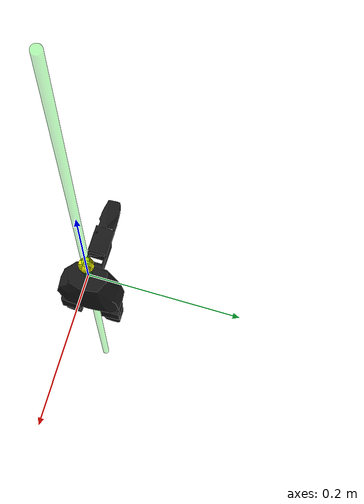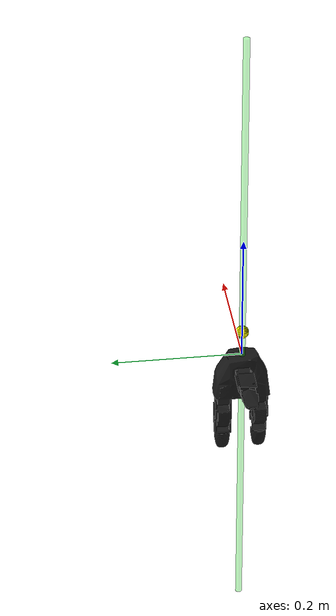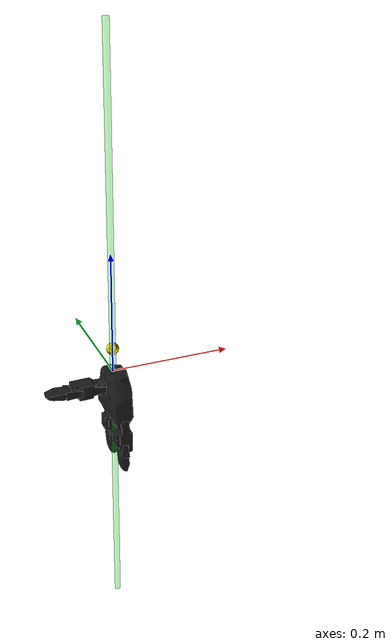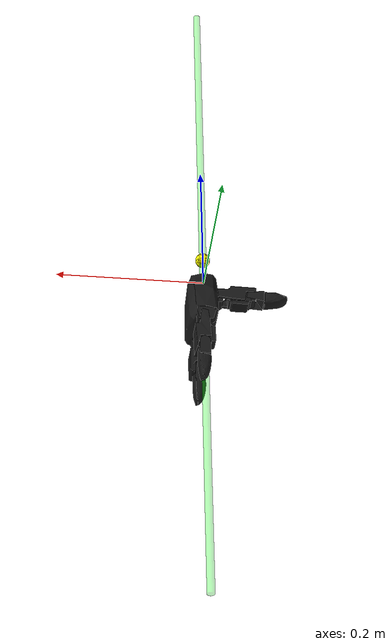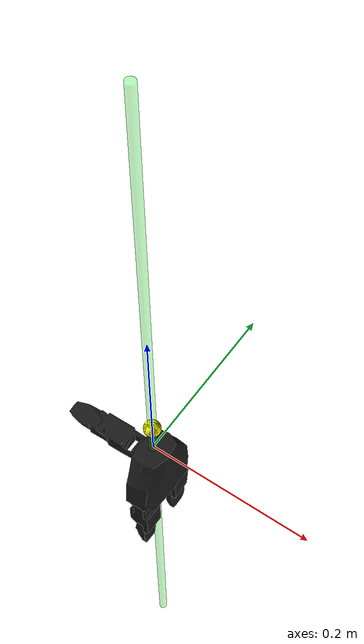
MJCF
<mujoco model="g1_threefinger_right_hand">
  <compiler angle="radian" />

  <default>
    <default class="finger_motor">
      <joint damping="0.01" armature="0.01" frictionloss="0.01" />
    </default>
  </default>

  <asset>
    <mesh name="right_hand_palm_link" file="meshes/right_hand_palm_link.STL" />
    <mesh name="right_hand_thumb_0_link" file="meshes/right_hand_thumb_0_link.STL" />
    <mesh name="right_hand_thumb_1_link" file="meshes/right_hand_thumb_1_link.STL" />
    <mesh name="right_hand_thumb_2_link" file="meshes/right_hand_thumb_2_link.STL" />
    <mesh name="right_hand_middle_0_link" file="meshes/right_hand_middle_0_link.STL" />
    <mesh name="right_hand_middle_1_link" file="meshes/right_hand_middle_1_link.STL" />
    <mesh name="right_hand_index_0_link" file="meshes/right_hand_index_0_link.STL" />
    <mesh name="right_hand_index_1_link" file="meshes/right_hand_index_1_link.STL" />
  </asset>

  <worldbody>
    <body name="right_hand_palm_link" pos="0 0 0.04" quat="0.5 -0.5 0.5 0.5">
      <site name="ft_frame" pos="0 0 0" size="0.01 0.01 0.01" rgba="1 1 0 1" type="sphere" group="1" />
      <geom pos="0.0415 -0.003 0" quat="1 0 0 0" type="mesh" contype="0"
        conaffinity="0" group="1" density="0" rgba="0.1 0.1 0.1 1"
        mesh="right_hand_palm_link" />
      <geom pos="0.0415 -0.003 0" quat="1 0 0 0" type="mesh"
        rgba="0.1 0.1 0.1 1" mesh="right_hand_palm_link" />
      <body name="eef" pos="0 0 0" quat="0.5 -0.5 0.5 0.5">
        <site name="grip_site" pos="0 0 0" size="0.01 0.01 0.01" rgba="1 1 0 1" type="sphere"
          group="2" />
        <site name="ee_x" pos="0.1 0 0" size="0.005 .1" quat="0.707105 0 0.707108 0" rgba="1 0 0 0"
          type="cylinder" group="1" />
        <site name="ee_y" pos="0 0.1 0" size="0.005 .1" quat="0.707105 0.707108 0 0" rgba="0 1 0 0"
          type="cylinder" group="1" />
        <site name="ee_z" pos="0 0 0.1" size="0.005 .1" quat="1 0 0 0" rgba="0 0 1 0"
          type="cylinder"
          group="1" />
        <!-- This site was added for visualization. -->
        <site name="grip_site_cylinder" pos="0 0 0" quat="-0.5 -0.5 -0.5 0.5" size="0.005 0.5"
          rgba="0 1 0 0.3" type="cylinder" group="1" />
      </body>
      <body name="right_hand_thumb_0_link" pos="0.067 -0.003 0">
        <inertial pos="-0.000884246 0.00863407 0.000944293"
          quat="0.643965 0.462991 -0.398986 0.460173" mass="0.0862366"
          diaginertia="1.6546e-05 1.60058e-05 1.43741e-05" />
        <joint name="right_hand_thumb_0_joint" pos="0 0 0" axis="0 1 0"
          range="-1.0472 1.0472" actuatorfrcrange="-2.45 2.45"
          class="finger_motor" />
        <geom type="mesh" contype="0" conaffinity="0" group="1" density="0"
          rgba="0.1 0.1 0.1 1" mesh="right_hand_thumb_0_link" name="right_hand_thumb_0_link_vis" />
        <geom type="mesh" rgba="0.1 0.1 0.1 1" mesh="right_hand_thumb_0_link" name="right_hand_thumb_0_link_col" />
        <body name="right_hand_thumb_1_link" pos="-0.0025 0.0193 0">
          <inertial pos="-0.000827888 0.0354744 -0.0003809"
            quat="0.705471 0.685598 -0.0956069 0.15207" mass="0.0588507"
            diaginertia="1.28514e-05 1.22902e-05 5.9666e-06" />
          <joint name="right_hand_thumb_1_joint" pos="0 0 0" axis="0 0 1"
            range="-1.0472 0.724312" actuatorfrcrange="-1.4 1.4"
            class="finger_motor" />
          <geom type="mesh" contype="0" conaffinity="0" group="1" density="0"
            rgba="0.1 0.1 0.1 1" mesh="right_hand_thumb_1_link" name="right_hand_thumb_1_link_vis" />
          <geom size="0.01 0.015 0.01" pos="-0.001 0.032 0" type="box"
            rgba="0.1 0.1 0.1 1" name="right_hand_thumb_1_link_col" />
          <body name="right_hand_thumb_2_link" pos="0 0.0458 0">
            <inertial pos="-0.00171735 0.0262819 0.000107789"
              quat="0.710977 0.703174 0.00766553 0.00017564" mass="0.0203063"
              diaginertia="4.61314e-06 3.86645e-06 1.53495e-06" />
            <joint name="right_hand_thumb_2_joint" pos="0 0 0" axis="0 0 1"
              range="-1.74533 0" actuatorfrcrange="-1.4 1.4"
              class="finger_motor" />
            <geom type="mesh" contype="0" conaffinity="0" group="1" density="0"
              rgba="0.1 0.1 0.1 1" mesh="right_hand_thumb_2_link" name="right_hand_thumb_2_link_vis" />
            <geom type="mesh" rgba="0.1 0.1 0.1 1"
              mesh="right_hand_thumb_2_link" name="right_hand_thumb_2_link_col" />
          </body>
        </body>
      </body>
      <body name="right_hand_index_0_link" pos="0.1192 -0.0046 0.0285">
        <inertial pos="0.0354744 -0.000827888 0.0003809"
          quat="0.606373 0.417187 0.552395 0.391313" mass="0.0588507"
          diaginertia="1.28514e-05 1.22902e-05 5.9666e-06" />
        <joint name="right_hand_index_0_joint" pos="0 0 0" axis="0 0 1"
          range="0 1.5708" actuatorfrcrange="-1.4 1.4" class="finger_motor" />
        <geom type="mesh" contype="0" conaffinity="0" group="1" density="0"
          rgba="0.1 0.1 0.1 1" mesh="right_hand_index_0_link" name="right_hand_index_0_link_vis" />
        <geom type="mesh" rgba="0.1 0.1 0.1 1" mesh="right_hand_index_0_link" name="right_hand_index_0_link_col" />
        <body name="right_hand_index_1_link" pos="0.0458 0 0">
          <inertial pos="0.0262819 -0.00171735 -0.000107789"
            quat="0.502861 0.502639 0.491799 0.502612" mass="0.0203063"
            diaginertia="4.61314e-06 3.86645e-06 1.53495e-06" />
          <joint name="right_hand_index_1_joint" pos="0 0 0" axis="0 0 1"
            range="0 1.74533" actuatorfrcrange="-1.4 1.4" class="finger_motor" />
          <geom type="mesh" contype="0" conaffinity="0" group="1" density="0"
            rgba="0.1 0.1 0.1 1" mesh="right_hand_index_1_link" name="right_hand_index_1_link_vis" />
          <geom type="mesh" rgba="0.1 0.1 0.1 1" mesh="right_hand_index_1_link" name="right_hand_index_1_link_col" />
        </body>
      </body>
      <body name="right_hand_middle_0_link" pos="0.1192 -0.0046 -0.0285">
        <inertial pos="0.0354744 -0.000827888 0.0003809"
          quat="0.606373 0.417187 0.552395 0.391313" mass="0.0588507"
          diaginertia="1.28514e-05 1.22902e-05 5.9666e-06" />
        <joint name="right_hand_middle_0_joint" pos="0 0 0" axis="0 0 1"
          range="0 1.5708" actuatorfrcrange="-1.4 1.4" class="finger_motor" />
        <geom type="mesh" contype="0" conaffinity="0" group="1" density="0"
          rgba="0.1 0.1 0.1 1" mesh="right_hand_middle_0_link" name="right_hand_middle_0_link_vis" />
        <geom type="mesh" rgba="0.1 0.1 0.1 1" mesh="right_hand_middle_0_link" name="right_hand_middle_0_link_col" />
        <body name="right_hand_middle_1_link" pos="0.0458 0 0">
          <inertial pos="0.0262819 -0.00171735 -0.000107789"
            quat="0.502861 0.502639 0.491799 0.502612" mass="0.0203063"
            diaginertia="4.61314e-06 3.86645e-06 1.53495e-06" />
          <joint name="right_hand_middle_1_joint" pos="0 0 0" axis="0 0 1"
            range="0 1.74533" actuatorfrcrange="-1.4 1.4" class="finger_motor" />
          <geom type="mesh" contype="0" conaffinity="0" group="1" density="0"
            rgba="0.1 0.1 0.1 1" mesh="right_hand_middle_1_link" name="right_hand_middle_1_link_vis" />
          <geom type="mesh" rgba="0.1 0.1 0.1 1" mesh="right_hand_middle_1_link" name="right_hand_middle_1_link_col" />
        </body>
      </body>

    </body>
  </worldbody>

  <actuator>
    <!-- Note that originally, they are torque actuators. -->
    <position name="right_hand_thumb_0_joint" joint="right_hand_thumb_0_joint"
      ctrlrange="-1.0472 1.0472" kp="15.0" kv="0.5" forcelimited="true"
      forcerange="-2.45 2.45" />
    <position name="right_hand_thumb_1_joint" joint="right_hand_thumb_1_joint"
      ctrlrange="-1.0472 0.724312" kp="15.0" kv="0.5" forcelimited="true"
      forcerange="-1.4 1.4" />
    <position name="right_hand_thumb_2_joint" joint="right_hand_thumb_2_joint"
      ctrlrange="-1.74533 0" kp="15.0" kv="0.5" forcelimited="true" forcerange="-1.4 1.4" />
      <position name="right_hand_index_0_joint" joint="right_hand_index_0_joint"
        ctrlrange="0 1.5708" kp="15.0" kv="0.5" forcelimited="true"
        forcerange="-1.4 1.4" />
      <position name="right_hand_index_1_joint" joint="right_hand_index_1_joint"
        ctrlrange="0 1.74533" kp="15.0" kv="0.5" forcelimited="true" forcerange="-1.4 1.4" />
    <position name="right_hand_middle_0_joint" joint="right_hand_middle_0_joint"
      ctrlrange="0 1.5708" kp="15.0" kv="0.5" forcelimited="true"
      forcerange="-1.4 1.4" />
    <position name="right_hand_middle_1_joint" joint="right_hand_middle_1_joint"
      ctrlrange="0 1.74533" kp="15.0" kv="0.5" forcelimited="true" forcerange="-1.4 1.4" />
  </actuator>

  <sensor>
    <force name="force_ee" site="ft_frame" />
    <torque name="torque_ee" site="ft_frame" />
  </sensor>
</mujoco>
